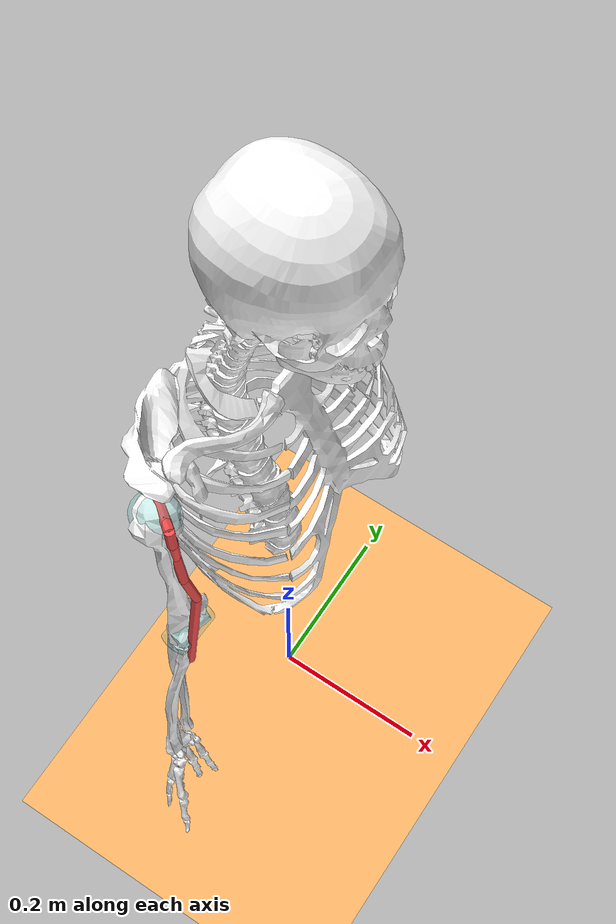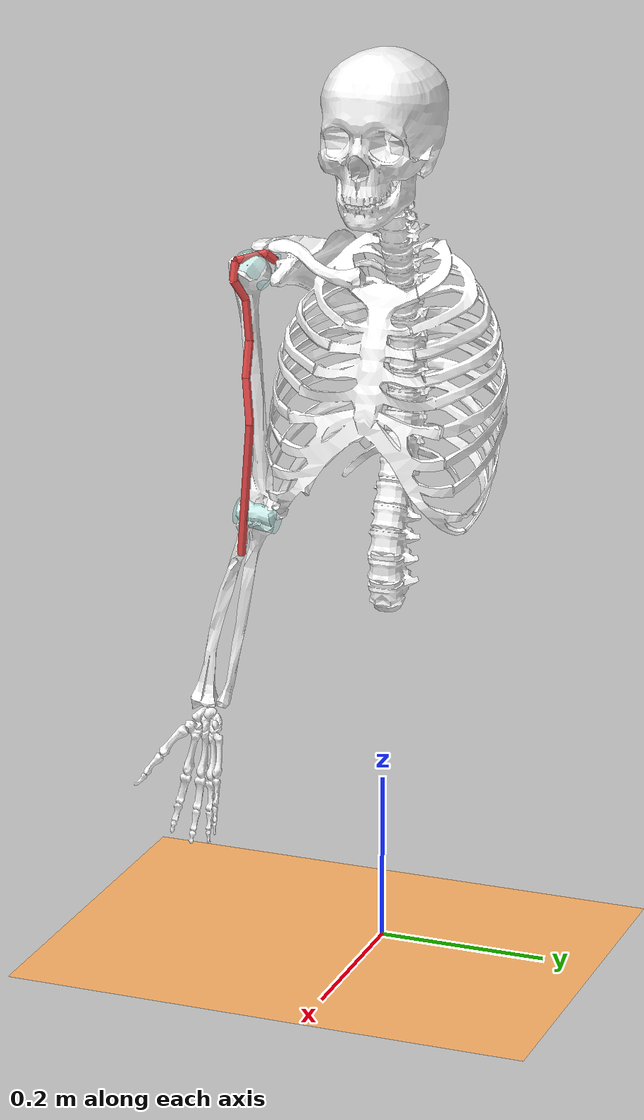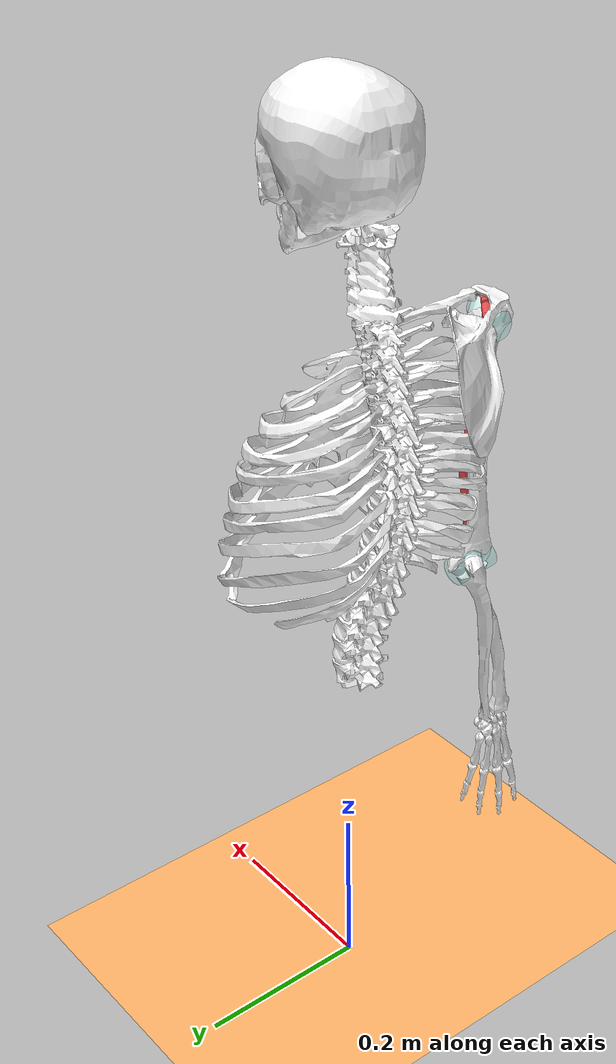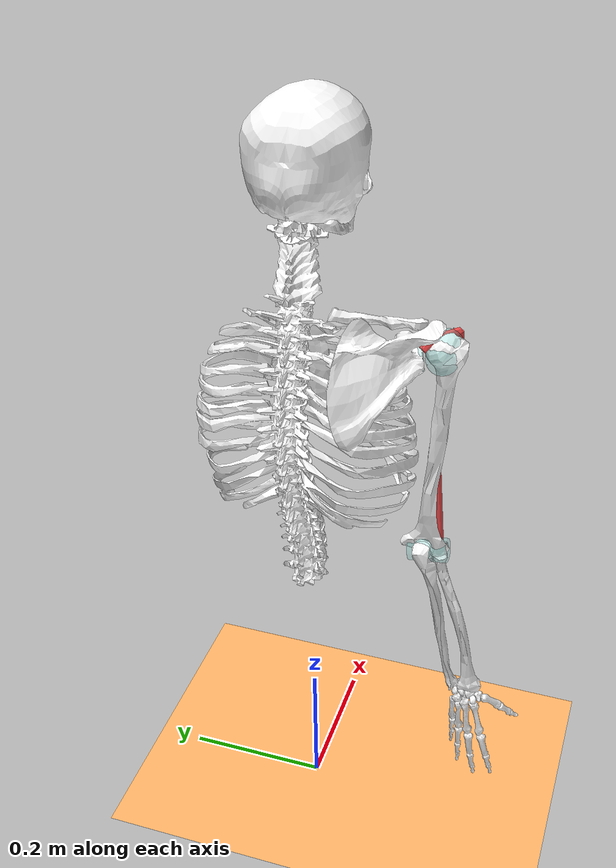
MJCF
<mujoco model="template">
  <!-- This model has been converted from an OpenSim model. Model conversion by MyoConverter https://github.com/MyoHub/myoConverter. This model is licensed under Apache 2.0. -->
  <compiler angle="radian" autolimits="true"/>
  <option timestep="0.001" collision="predefined"/>
  <size njmax="1000" nconmax="400" nkey="1" nuser_jnt="1"/>
  <visual>
    <scale framelength="0.5" framewidth="0.01"/>
  </visual>
  <default class="main">
    <joint limited="true" armature="1e-05" damping="0.05"/>
    <geom margin="0.001" rgba="0.8 0.6 0.4 1"/>
    <site size="0.001 0.005 0.005"/>
    <tendon width="0.005" rgba="0.95 0.3 0.3 1"/>
    <default class="muscle">
      <general ctrllimited="true" ctrlrange="0 1" dyntype="muscle" gaintype="muscle" biastype="muscle" dynprm="0.01 0.04 0 0 0 0 0 0 0 0" gainprm="0.75 1.05 -1 200 0.5 1.6 1.5 1.3 1.2 0" biasprm="0.75 1.05 -1 200 0.5 1.6 1.5 1.3 1.2 0"/>
    </default>
    <default class="motor">
      <general gainprm="5 0 0 0 0 0 0 0 0 0"/>
    </default>
  </default>
  <asset>
    <texture type="skybox" builtin="gradient" rgb1="1 1 1" rgb2="0.6 0.8 1" width="256" height="1536"/>
    <mesh name="base_geom_1_ground_ribs" file="Geometry/ground_ribs.stl"/>
    <mesh name="base_geom_2_ground_spine" file="Geometry/ground_spine.stl"/>
    <mesh name="base_geom_3_ground_skull" file="Geometry/ground_skull.stl"/>
    <mesh name="base_geom_4_ground_jaw" file="Geometry/ground_jaw.stl"/>
    <mesh name="base_geom_5_ground_r_clavicle" file="Geometry/ground_r_clavicle.stl"/>
    <mesh name="base_geom_6_ground_r_scapula" file="Geometry/ground_r_scapula.stl"/>
    <mesh name="r_humerus_geom_1_arm_r_humerus" file="Geometry/arm_r_humerus.stl"/>
    <mesh name="r_ulna_radius_hand_geom_1_arm_r_ulna" file="Geometry/arm_r_ulna.stl"/>
    <mesh name="r_ulna_radius_hand_geom_2_arm_r_radius" file="Geometry/arm_r_radius.stl"/>
    <mesh name="r_ulna_radius_hand_geom_3_arm_r_lunate" file="Geometry/arm_r_lunate.stl"/>
    <mesh name="r_ulna_radius_hand_geom_4_arm_r_scaphoid" file="Geometry/arm_r_scaphoid.stl"/>
    <mesh name="r_ulna_radius_hand_geom_5_arm_r_pisiform" file="Geometry/arm_r_pisiform.stl"/>
    <mesh name="r_ulna_radius_hand_geom_6_arm_r_triquetrum" file="Geometry/arm_r_triquetrum.stl"/>
    <mesh name="r_ulna_radius_hand_geom_7_arm_r_capitate" file="Geometry/arm_r_capitate.stl"/>
    <mesh name="r_ulna_radius_hand_geom_8_arm_r_trapezium" file="Geometry/arm_r_trapezium.stl"/>
    <mesh name="r_ulna_radius_hand_geom_9_arm_r_trapezoid" file="Geometry/arm_r_trapezoid.stl"/>
    <mesh name="r_ulna_radius_hand_geom_10_arm_r_hamate" file="Geometry/arm_r_hamate.stl"/>
    <mesh name="r_ulna_radius_hand_geom_11_arm_r_1mc" file="Geometry/arm_r_1mc.stl"/>
    <mesh name="r_ulna_radius_hand_geom_12_arm_r_2mc" file="Geometry/arm_r_2mc.stl"/>
    <mesh name="r_ulna_radius_hand_geom_13_arm_r_3mc" file="Geometry/arm_r_3mc.stl"/>
    <mesh name="r_ulna_radius_hand_geom_14_arm_r_4mc" file="Geometry/arm_r_4mc.stl"/>
    <mesh name="r_ulna_radius_hand_geom_15_arm_r_5mc" file="Geometry/arm_r_5mc.stl"/>
    <mesh name="r_ulna_radius_hand_geom_16_arm_r_thumbprox" file="Geometry/arm_r_thumbprox.stl"/>
    <mesh name="r_ulna_radius_hand_geom_17_arm_r_thumbdist" file="Geometry/arm_r_thumbdist.stl"/>
    <mesh name="r_ulna_radius_hand_geom_18_arm_r_2proxph" file="Geometry/arm_r_2proxph.stl"/>
    <mesh name="r_ulna_radius_hand_geom_19_arm_r_2midph" file="Geometry/arm_r_2midph.stl"/>
    <mesh name="r_ulna_radius_hand_geom_20_arm_r_2distph" file="Geometry/arm_r_2distph.stl"/>
    <mesh name="r_ulna_radius_hand_geom_21_arm_r_3proxph" file="Geometry/arm_r_3proxph.stl"/>
    <mesh name="r_ulna_radius_hand_geom_22_arm_r_3midph" file="Geometry/arm_r_3midph.stl"/>
    <mesh name="r_ulna_radius_hand_geom_23_arm_r_3distph" file="Geometry/arm_r_3distph.stl"/>
    <mesh name="r_ulna_radius_hand_geom_24_arm_r_4proxph" file="Geometry/arm_r_4proxph.stl"/>
    <mesh name="r_ulna_radius_hand_geom_25_arm_r_4midph" file="Geometry/arm_r_4midph.stl"/>
    <mesh name="r_ulna_radius_hand_geom_26_arm_r_4distph" file="Geometry/arm_r_4distph.stl"/>
    <mesh name="r_ulna_radius_hand_geom_27_arm_r_5proxph" file="Geometry/arm_r_5proxph.stl"/>
    <mesh name="r_ulna_radius_hand_geom_28_arm_r_5midph" file="Geometry/arm_r_5midph.stl"/>
    <mesh name="r_ulna_radius_hand_geom_29_arm_r_5distph" file="Geometry/arm_r_5distph.stl"/>
  </asset>
  <worldbody>
    <light pos="0 0 0" dir="0 0 -1" directional="true"/>
    <body name="ground" pos="0 0 0" quat="0.707035 0.707179 0 0" gravcomp="0">
      <geom name="ground-plane" size="10 10 0.125" quat="0.707035 -0.707179 0 0" type="plane" rgba="1 0.7 0.4 1"/>
    </body>
    <body name="base" pos="0 0 0.8" quat="0.707035 0.707179 0 0" gravcomp="0">
      <inertial pos="0 0 0" mass="0.001" diaginertia="0.001 0.001 0.001"/>
      <geom name="base_geom_1" type="mesh" rgba="1 1 1 1" mesh="base_geom_1_ground_ribs"/>
      <geom name="base_geom_2" type="mesh" rgba="1 1 1 1" mesh="base_geom_2_ground_spine"/>
      <geom name="base_geom_3" type="mesh" rgba="1 1 1 1" mesh="base_geom_3_ground_skull"/>
      <geom name="base_geom_4" type="mesh" rgba="1 1 1 1" mesh="base_geom_4_ground_jaw"/>
      <geom name="base_geom_5" type="mesh" rgba="1 1 1 1" mesh="base_geom_5_ground_r_clavicle"/>
      <geom name="base_geom_6" type="mesh" rgba="1 1 1 1" mesh="base_geom_6_ground_r_scapula"/>
      <geom name="TRIlongglen_cylinder" size="0.003 0.015" pos="-0.0439 -0.0039 0.1478" quat="0.351544 0.110456 -0.628265 0.685201" type="cylinder" group="2" rgba="0.19 0.83 0.78 0.2"/>
      <site name="TRIlongglen_sidesite" pos="-0.04682 -0.002529 0.1502" size="0.0005"/>
      <site name="BIClong_BIClong-P1" pos="-0.039235 0.00347 0.14795"/>
      <site name="BIClong_BIClong-P2" pos="-0.028945 0.01391 0.15639"/>
      <site name="r_acromion_marker" pos="-0.01256 0.04 0.17" size="0.01" group="4" rgba="1 0.1 0.5 0.5"/>
      <body name="r_humerus" pos="-0.01755 -0.007 0.17" gravcomp="0">
        <inertial pos="0 -0.180496 0" quat="0.707107 0.707107 0 0" mass="1.86457" diaginertia="0.01481 0.013193 0.004551"/>
        <joint name="r_shoulder_elev" pos="0 0 0" axis="-0.0588977 0.00229991 0.998261" range="-1.571 3.142"/>
        <geom name="r_humerus_geom_1" type="mesh" rgba="1 1 1 1" mesh="r_humerus_geom_1_arm_r_humerus"/>
        <geom name="TRIlonghh_ellipsoid" size="0.02" pos="-0.0078 -0.0041 -0.0014" quat="0.414166 0.226558 -0.879857 -0.0546691" group="2" rgba="0.19 0.83 0.78 0.2"/>
        <geom name="BIClonghh_ellipsoid" size="0.02" pos="0.0033 0.0073 0.0003" quat="0.227685 -0.774064 0.117793 0.578886" group="2" rgba="0.19 0.83 0.78 0.2"/>
        <geom name="TRI_cylinder" size="0.016 0.025" pos="0.0028 -0.2919 -0.0069" quat="0.994531 -0.0700249 0.0022946 0.0774514" type="cylinder" group="2" rgba="0.19 0.83 0.78 0.2"/>
        <geom name="BIClonghh_ellipsoid_BIClong" size="0.0166387" pos="0.00110185 0.00746056 -0.000115858" quat="0.227685 -0.774064 0.117793 0.578886" group="2" rgba="0.19 0.83 0.78 0.2"/>
        <site name="TRIlonghh_sidesite" pos="-0.02362 -0.006026 -0.01507" size="0.0005"/>
        <site name="BIClonghh_sidesite" pos="0.01267 0.02554 0.004834" size="0.0005"/>
        <site name="BIClong_BIClong-P3" pos="0.02131 0.01793 0.01028"/>
        <site name="BIClong_BIClong-P4" pos="0.02378 -0.00511 0.01201"/>
        <site name="BIClong_BIClong-P5" pos="0.01345 -0.02827 0.00136"/>
        <site name="BIClong_BIClong-P6" pos="0.01068 -0.07736 -0.00165"/>
        <site name="BIClong_BIClong-P7" pos="0.01703 -0.12125 0.00024"/>
        <site name="BIClong_BIClong-P8" pos="0.0228 -0.1754 -0.0063"/>
        <site name="BIClonghh_ellipsoid_BIClong_2_sidesite" pos="0.0215273 0.0139164 -0.00445919" size="0.0005"/>
        <site name="r_humerus_epicondyle_marker" pos="0.005 -0.2904 0.03" size="0.01" group="4" rgba="1 0.1 0.5 0.5"/>
        <body name="r_ulna_radius_hand" pos="0.0061 -0.2904 -0.0123" gravcomp="0">
          <inertial pos="0 -0.181479 0" quat="0.5 0.5 -0.5 0.5" mass="1.53432" diaginertia="0.020062 0.019281 0.001571"/>
          <joint name="r_elbow_flex" pos="0 0 0" axis="0.0494004 0.0366003 0.998108" range="0 2.269"/>
          <geom name="r_ulna_radius_hand_geom_1" type="mesh" rgba="1 1 1 1" mesh="r_ulna_radius_hand_geom_1_arm_r_ulna"/>
          <geom name="r_ulna_radius_hand_geom_2" type="mesh" rgba="1 1 1 1" mesh="r_ulna_radius_hand_geom_2_arm_r_radius"/>
          <geom name="r_ulna_radius_hand_geom_3" type="mesh" rgba="1 1 1 1" mesh="r_ulna_radius_hand_geom_3_arm_r_lunate"/>
          <geom name="r_ulna_radius_hand_geom_4" type="mesh" rgba="1 1 1 1" mesh="r_ulna_radius_hand_geom_4_arm_r_scaphoid"/>
          <geom name="r_ulna_radius_hand_geom_5" type="mesh" rgba="1 1 1 1" mesh="r_ulna_radius_hand_geom_5_arm_r_pisiform"/>
          <geom name="r_ulna_radius_hand_geom_6" type="mesh" rgba="1 1 1 1" mesh="r_ulna_radius_hand_geom_6_arm_r_triquetrum"/>
          <geom name="r_ulna_radius_hand_geom_7" type="mesh" rgba="1 1 1 1" mesh="r_ulna_radius_hand_geom_7_arm_r_capitate"/>
          <geom name="r_ulna_radius_hand_geom_8" type="mesh" rgba="1 1 1 1" mesh="r_ulna_radius_hand_geom_8_arm_r_trapezium"/>
          <geom name="r_ulna_radius_hand_geom_9" type="mesh" rgba="1 1 1 1" mesh="r_ulna_radius_hand_geom_9_arm_r_trapezoid"/>
          <geom name="r_ulna_radius_hand_geom_10" type="mesh" rgba="1 1 1 1" mesh="r_ulna_radius_hand_geom_10_arm_r_hamate"/>
          <geom name="r_ulna_radius_hand_geom_11" type="mesh" rgba="1 1 1 1" mesh="r_ulna_radius_hand_geom_11_arm_r_1mc"/>
          <geom name="r_ulna_radius_hand_geom_12" type="mesh" rgba="1 1 1 1" mesh="r_ulna_radius_hand_geom_12_arm_r_2mc"/>
          <geom name="r_ulna_radius_hand_geom_13" type="mesh" rgba="1 1 1 1" mesh="r_ulna_radius_hand_geom_13_arm_r_3mc"/>
          <geom name="r_ulna_radius_hand_geom_14" type="mesh" rgba="1 1 1 1" mesh="r_ulna_radius_hand_geom_14_arm_r_4mc"/>
          <geom name="r_ulna_radius_hand_geom_15" type="mesh" rgba="1 1 1 1" mesh="r_ulna_radius_hand_geom_15_arm_r_5mc"/>
          <geom name="r_ulna_radius_hand_geom_16" type="mesh" rgba="1 1 1 1" mesh="r_ulna_radius_hand_geom_16_arm_r_thumbprox"/>
          <geom name="r_ulna_radius_hand_geom_17" type="mesh" rgba="1 1 1 1" mesh="r_ulna_radius_hand_geom_17_arm_r_thumbdist"/>
          <geom name="r_ulna_radius_hand_geom_18" type="mesh" rgba="1 1 1 1" mesh="r_ulna_radius_hand_geom_18_arm_r_2proxph"/>
          <geom name="r_ulna_radius_hand_geom_19" type="mesh" rgba="1 1 1 1" mesh="r_ulna_radius_hand_geom_19_arm_r_2midph"/>
          <geom name="r_ulna_radius_hand_geom_20" type="mesh" rgba="1 1 1 1" mesh="r_ulna_radius_hand_geom_20_arm_r_2distph"/>
          <geom name="r_ulna_radius_hand_geom_21" type="mesh" rgba="1 1 1 1" mesh="r_ulna_radius_hand_geom_21_arm_r_3proxph"/>
          <geom name="r_ulna_radius_hand_geom_22" type="mesh" rgba="1 1 1 1" mesh="r_ulna_radius_hand_geom_22_arm_r_3midph"/>
          <geom name="r_ulna_radius_hand_geom_23" type="mesh" rgba="1 1 1 1" mesh="r_ulna_radius_hand_geom_23_arm_r_3distph"/>
          <geom name="r_ulna_radius_hand_geom_24" type="mesh" rgba="1 1 1 1" mesh="r_ulna_radius_hand_geom_24_arm_r_4proxph"/>
          <geom name="r_ulna_radius_hand_geom_25" type="mesh" rgba="1 1 1 1" mesh="r_ulna_radius_hand_geom_25_arm_r_4midph"/>
          <geom name="r_ulna_radius_hand_geom_26" type="mesh" rgba="1 1 1 1" mesh="r_ulna_radius_hand_geom_26_arm_r_4distph"/>
          <geom name="r_ulna_radius_hand_geom_27" type="mesh" rgba="1 1 1 1" mesh="r_ulna_radius_hand_geom_27_arm_r_5proxph"/>
          <geom name="r_ulna_radius_hand_geom_28" type="mesh" rgba="1 1 1 1" mesh="r_ulna_radius_hand_geom_28_arm_r_5midph"/>
          <geom name="r_ulna_radius_hand_geom_29" type="mesh" rgba="1 1 1 1" mesh="r_ulna_radius_hand_geom_29_arm_r_5distph"/>
          <site name="BIClong_BIClong-P9" pos="0.00751 -0.04839 0.02179"/>
          <site name="r_radius_styloid_marker" pos="-0.0011 -0.2356 0.0943" size="0.01" group="4" rgba="1 0.1 0.5 0.5"/>
        </body>
      </body>
    </body>
  </worldbody>
  <contact>
    <pair geom1="ground-plane" geom2="base_geom_3"/>
    <pair geom1="ground-plane" geom2="base_geom_4"/>
    <pair geom1="ground-plane" geom2="base_geom_5"/>
    <pair geom1="ground-plane" geom2="base_geom_6"/>
    <pair geom1="ground-plane" geom2="base_geom_1"/>
    <pair geom1="ground-plane" geom2="base_geom_2"/>
    <pair geom1="ground-plane" geom2="r_humerus_geom_1"/>
    <pair geom1="ground-plane" geom2="r_ulna_radius_hand_geom_14"/>
    <pair geom1="ground-plane" geom2="r_ulna_radius_hand_geom_1"/>
    <pair geom1="ground-plane" geom2="r_ulna_radius_hand_geom_13"/>
    <pair geom1="ground-plane" geom2="r_ulna_radius_hand_geom_12"/>
    <pair geom1="ground-plane" geom2="r_ulna_radius_hand_geom_11"/>
    <pair geom1="ground-plane" geom2="r_ulna_radius_hand_geom_10"/>
    <pair geom1="ground-plane" geom2="r_ulna_radius_hand_geom_9"/>
    <pair geom1="ground-plane" geom2="r_ulna_radius_hand_geom_8"/>
    <pair geom1="ground-plane" geom2="r_ulna_radius_hand_geom_7"/>
    <pair geom1="ground-plane" geom2="r_ulna_radius_hand_geom_6"/>
    <pair geom1="ground-plane" geom2="r_ulna_radius_hand_geom_5"/>
    <pair geom1="ground-plane" geom2="r_ulna_radius_hand_geom_4"/>
    <pair geom1="ground-plane" geom2="r_ulna_radius_hand_geom_3"/>
    <pair geom1="ground-plane" geom2="r_ulna_radius_hand_geom_2"/>
    <pair geom1="ground-plane" geom2="r_ulna_radius_hand_geom_15"/>
    <pair geom1="ground-plane" geom2="r_ulna_radius_hand_geom_28"/>
    <pair geom1="ground-plane" geom2="r_ulna_radius_hand_geom_27"/>
    <pair geom1="ground-plane" geom2="r_ulna_radius_hand_geom_26"/>
    <pair geom1="ground-plane" geom2="r_ulna_radius_hand_geom_25"/>
    <pair geom1="ground-plane" geom2="r_ulna_radius_hand_geom_24"/>
    <pair geom1="ground-plane" geom2="r_ulna_radius_hand_geom_23"/>
    <pair geom1="ground-plane" geom2="r_ulna_radius_hand_geom_22"/>
    <pair geom1="ground-plane" geom2="r_ulna_radius_hand_geom_21"/>
    <pair geom1="ground-plane" geom2="r_ulna_radius_hand_geom_20"/>
    <pair geom1="ground-plane" geom2="r_ulna_radius_hand_geom_19"/>
    <pair geom1="ground-plane" geom2="r_ulna_radius_hand_geom_18"/>
    <pair geom1="ground-plane" geom2="r_ulna_radius_hand_geom_17"/>
    <pair geom1="ground-plane" geom2="r_ulna_radius_hand_geom_29"/>
    <pair geom1="ground-plane" geom2="r_ulna_radius_hand_geom_16"/>
  </contact>
  <tendon>
    <spatial name="BIClong_tendon">
      <site site="BIClong_BIClong-P1"/>
      <site site="BIClong_BIClong-P2"/>
      <geom geom="BIClonghh_ellipsoid_BIClong" sidesite="BIClonghh_ellipsoid_BIClong_2_sidesite"/>
      <site site="BIClong_BIClong-P3"/>
      <site site="BIClong_BIClong-P4"/>
      <site site="BIClong_BIClong-P5"/>
      <site site="BIClong_BIClong-P6"/>
      <site site="BIClong_BIClong-P7"/>
      <site site="BIClong_BIClong-P8"/>
      <site site="BIClong_BIClong-P9"/>
    </spatial>
  </tendon>
  <actuator>
    <general name="BIClong" class="muscle" tendon="BIClong_tendon" lengthrange="0.319375 0.443836" actdim="1" gainprm="1 1.38772 918.962 1 0 2 10 3.14554 1.4 0" biasprm="1 1.38772 918.962 1 0 2 10 3.14554 1.4 0"/>
  </actuator>
  <keyframe>
    <key name="default-pose"/>
  </keyframe>
</mujoco>
